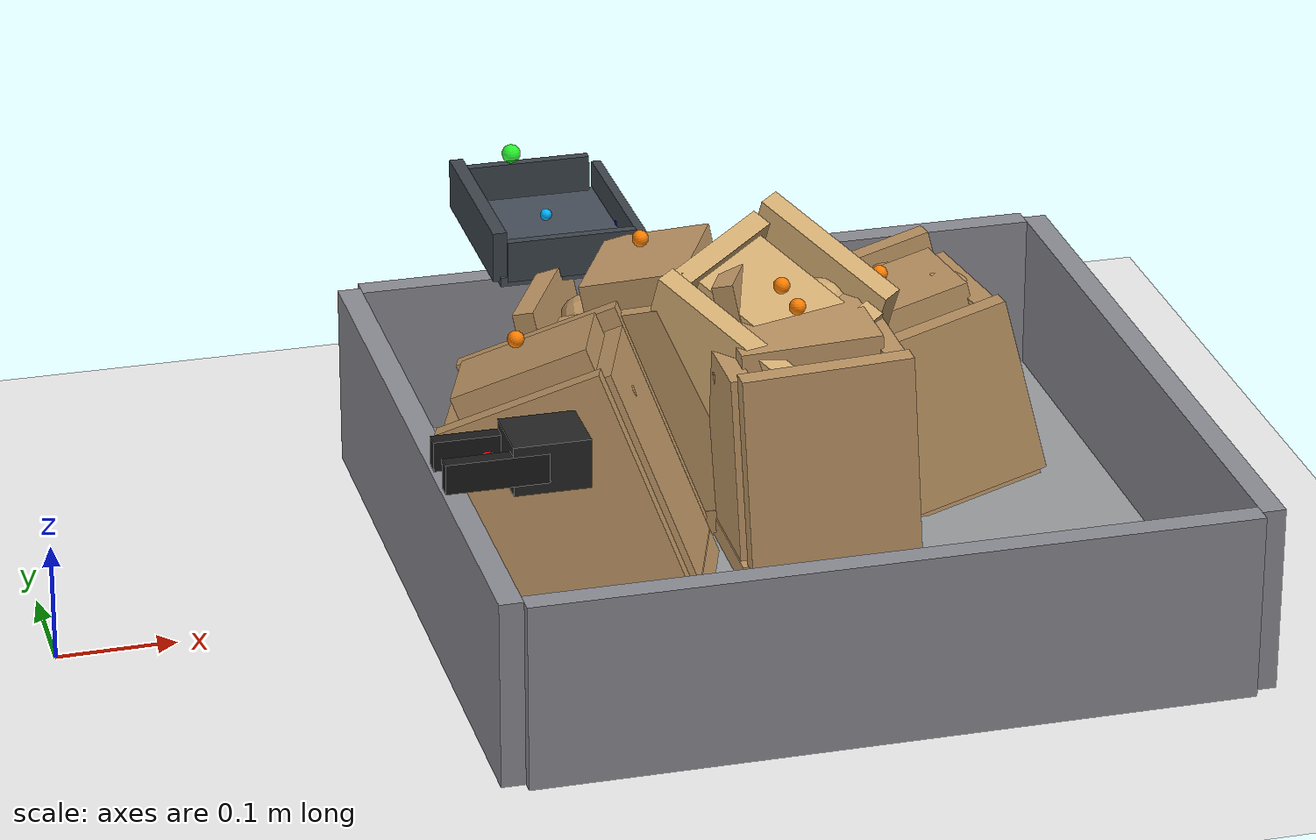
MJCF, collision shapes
<mujoco model="low_fill_top_collapsed_leaning_wedged_ep0_try0">
  <compiler angle="radian" coordinate="local" inertiafromgeom="true" meshdir="D:/Michael/2025/01.Research/01.Parceldetection/16.Pybullet/bullet3-master (1)/bullet3-master/examples/pybullet/examples/DeformableTest/Sackcodex2/object"/>
  <option timestep="0.002" gravity="0 0 -9.81" integrator="implicitfast" iterations="100" tolerance="1e-8"/>
  <size memory="768M" nconmax="12000"/>

  <visual>
    <global azimuth="128" elevation="-20"/>
    <headlight ambient="0.34 0.34 0.34" diffuse="0.78 0.78 0.78" specular="0.15 0.15 0.15"/>
    <rgba haze="0.11 0.13 0.18 1"/>
  </visual>

  <default>
    <geom condim="4" friction="1.15 0.03 0.01" margin="0.003" solimp="0.93 0.98 0.003" solref="0.012 1"/>
    <joint damping="1.2" armature="0.002"/>
    <position kp="2500" forcelimited="true" forcerange="-420 420"/>
    <motor ctrllimited="true"/>
  </default>

  <asset>
    <mesh name="sack_0_visual_mesh" file="sack.obj" scale="0.0716 0.0716 0.0748"/>
    <mesh name="sack_1_visual_mesh" file="sack3.obj" scale="0.0723 0.0723 0.0745"/>
    <mesh name="sack_2_visual_mesh" file="sack9.obj" scale="0.0712 0.0712 0.0755"/>
    <mesh name="sack_3_visual_mesh" file="sack9.obj" scale="0.0727 0.0727 0.0760"/>
    <mesh name="sack_4_visual_mesh" file="sack6Apply.obj" scale="0.0715 0.0715 0.0752"/>
  </asset>

  <worldbody>
    <light name="key" pos="0.85 0.15 1.8" dir="-0.2 -0.1 -1" directional="true"/>
    <geom name="floor" type="plane" size="2 2 0.1" rgba="0.93 0.93 0.93 1"/>
    <geom name="work_pad" type="box" pos="0.62 0 0.012" size="0.30 0.30 0.012" rgba="0.60 0.61 0.62 1" friction="1.4 0.05 0.01"/>
    <geom name="corral_front" type="box" pos="0.93 0.00 0.08" size="0.010 0.30 0.08" rgba="0.55 0.55 0.58 0.22" friction="1.0 0.03 0.01"/>
    <geom name="corral_back" type="box" pos="0.31 0.00 0.08" size="0.010 0.30 0.08" rgba="0.55 0.55 0.58 0.18" friction="1.0 0.03 0.01"/>
    <geom name="corral_left" type="box" pos="0.62 0.30 0.08" size="0.30 0.010 0.08" rgba="0.55 0.55 0.58 0.14" friction="1.0 0.03 0.01"/>
    <geom name="corral_right" type="box" pos="0.62 -0.30 0.08" size="0.30 0.010 0.08" rgba="0.55 0.55 0.58 0.14" friction="1.0 0.03 0.01"/>
    <camera name="overview" pos="1.22 0.00 0.92" xyaxes="0 1 0 -0.46 0 0.88"/>

    <body name="gripper_mocap" mocap="true" pos="0.36 -0.33 0.30" quat="0.707107 0 -0.707107 0"/>
    <body name="scoop_mocap" mocap="true" pos="0.42 0.28 0.20" quat="1 0 0 0"/>

    <body name="gripper_ctrl_base" pos="0.36 -0.33 0.30">
      <inertial pos="0 0 0" mass="0.001" diaginertia="1e-6 1e-6 1e-6"/>
      <joint name="gripper_ctrl_x" type="slide" axis="1 0 0" limited="true" range="0.20 1.00"/>
      <body name="gripper_ctrl_y_body">
        <inertial pos="0 0 0" mass="0.001" diaginertia="1e-6 1e-6 1e-6"/>
        <joint name="gripper_ctrl_y" type="slide" axis="0 1 0" limited="true" range="-0.60 0.60"/>
        <body name="gripper_ctrl_z_body">
          <inertial pos="0 0 0" mass="0.001" diaginertia="1e-6 1e-6 1e-6"/>
          <joint name="gripper_ctrl_z" type="slide" axis="0 0 1" limited="true" range="0.04 0.70"/>
          <body name="gripper_ctrl_yaw_body">
            <inertial pos="0 0 0" mass="0.001" diaginertia="1e-6 1e-6 1e-6"/>
            <joint name="gripper_ctrl_yaw" type="hinge" axis="0 0 1" limited="true" range="-3.1416 3.1416"/>
            <body name="gripper_ctrl_pitch_body">
              <inertial pos="0 0 0" mass="0.001" diaginertia="1e-6 1e-6 1e-6"/>
              <joint name="gripper_ctrl_pitch" type="hinge" axis="0 1 0" limited="true" range="-3.1416 3.1416"/>
              <body name="gripper_ctrl_roll_body">
                <inertial pos="0 0 0" mass="0.001" diaginertia="1e-6 1e-6 1e-6"/>
                <joint name="gripper_ctrl_roll" type="hinge" axis="1 0 0" limited="true" range="-3.1416 3.1416"/>
              </body>
            </body>
          </body>
        </body>
      </body>
    </body>

    <body name="scoop_ctrl_base" pos="0.42 0.28 0.20">
      <inertial pos="0 0 0" mass="0.001" diaginertia="1e-6 1e-6 1e-6"/>
      <joint name="scoop_ctrl_x" type="slide" axis="1 0 0" limited="true" range="0.20 1.00"/>
      <body name="scoop_ctrl_y_body">
        <inertial pos="0 0 0" mass="0.001" diaginertia="1e-6 1e-6 1e-6"/>
        <joint name="scoop_ctrl_y" type="slide" axis="0 1 0" limited="true" range="-0.60 0.60"/>
        <body name="scoop_ctrl_z_body">
          <inertial pos="0 0 0" mass="0.001" diaginertia="1e-6 1e-6 1e-6"/>
          <joint name="scoop_ctrl_z" type="slide" axis="0 0 1" limited="true" range="0.04 0.70"/>
          <body name="scoop_ctrl_yaw_body">
            <inertial pos="0 0 0" mass="0.001" diaginertia="1e-6 1e-6 1e-6"/>
            <joint name="scoop_ctrl_yaw" type="hinge" axis="0 0 1" limited="true" range="-3.1416 3.1416"/>
            <body name="scoop_ctrl_pitch_body">
              <inertial pos="0 0 0" mass="0.001" diaginertia="1e-6 1e-6 1e-6"/>
              <joint name="scoop_ctrl_pitch" type="hinge" axis="0 1 0" limited="true" range="-3.1416 3.1416"/>
              <body name="scoop_ctrl_roll_body">
                <inertial pos="0 0 0" mass="0.001" diaginertia="1e-6 1e-6 1e-6"/>
                <joint name="scoop_ctrl_roll" type="hinge" axis="1 0 0" limited="true" range="-3.1416 3.1416"/>
              </body>
            </body>
          </body>
        </body>
      </body>
    </body>

    <body name="gripper_tool" pos="0.36 -0.33 0.30" quat="0.707107 0 -0.707107 0">
      <freejoint name="gripper_tool_free"/>
      <inertial pos="0 0 0.04" mass="0.08" diaginertia="0.0002 0.0002 0.0002"/>
      <geom name="gripper_palm" type="box" pos="0 0 0.030" size="0.020 0.026 0.030" rgba="0.14 0.14 0.14 1"/>
      <body name="left_finger_body" pos="0 0 0.072">
        <joint name="left_finger_slide" type="slide" axis="0 1 0" limited="true" range="0.010 0.040" damping="12"/>
        <geom name="left_finger_geom" type="box" pos="0 0.020 0" size="0.012 0.006 0.040" rgba="0.10 0.10 0.10 1" friction="2.2 0.05 0.01"/>
      </body>
      <body name="right_finger_body" pos="0 0 0.072">
        <joint name="right_finger_slide" type="slide" axis="0 -1 0" limited="true" range="0.010 0.040" damping="12"/>
        <geom name="right_finger_geom" type="box" pos="0 -0.020 0" size="0.012 0.006 0.040" rgba="0.10 0.10 0.10 1" friction="2.2 0.05 0.01"/>
      </body>
      <site name="gripper_pinch_site" pos="0 0 0.074" size="0.006" rgba="1 0 0 1"/>
    </body>

    <body name="scoop_tool" pos="0.42 0.28 0.20" quat="1 0 0 0">
      <freejoint name="scoop_tool_free"/>
      <inertial pos="0 0 0.02" mass="0.10" diaginertia="0.0003 0.0003 0.0003"/>
      <geom name="scoop_plate" type="box" pos="0.062 0 0" size="0.062 0.085 0.004" rgba="0.28 0.31 0.35 1" friction="1.7 0.05 0.01"/>
      <geom name="scoop_lip" type="box" pos="0.126 0 0.014" size="0.004 0.085 0.014" rgba="0.24 0.27 0.30 1" friction="1.7 0.05 0.01"/>
      <geom name="scoop_left_rail" type="box" pos="0.062 0.082 0.018" size="0.056 0.004 0.018" rgba="0.24 0.27 0.30 1"/>
      <geom name="scoop_right_rail" type="box" pos="0.062 -0.082 0.018" size="0.056 0.004 0.018" rgba="0.24 0.27 0.30 1"/>
      <geom name="scoop_backstop" type="box" pos="0.000 0 0.022" size="0.006 0.082 0.022" rgba="0.24 0.27 0.30 1"/>
      <site name="scoop_tip_site" pos="0.126 0 0.005" size="0.005" rgba="0 0 1 1"/>
      <site name="scoop_center_site" pos="0.060 0 0.020" size="0.005" rgba="0 0.7 1 1"/>
      <site name="score_overlay_site" pos="0.030 0 0.080" size="0.008" rgba="0 1 0 0.8"/>
    </body>

    <body name="sack_0" pos="0.6091 0.0763 0.1537" euler="0.4685 0.0579 -0.9648">
      <freejoint name="sack_0_free"/>

      <geom name="sack_0_visual" type="mesh" mesh="sack_0_visual_mesh" rgba="0.820 0.670 0.440 0.92" contype="0" conaffinity="0"/>
      <site name="sack_0_center_site" pos="0 0 0.000" size="0.006" rgba="0 1 0 1"/>
      <site name="sack_0_top_site" pos="0 0.0060 0.1007" size="0.007" rgba="1 0.5 0 1"/>
      <site name="sack_0_side_site" pos="0.0000 0.0494 0.018" size="0.007" rgba="1 0.8 0 1"/>

      <geom name="sack_0_core_geom" type="ellipsoid" pos="0 0 0.0055" size="0.0455 0.0357 0.0679" mass="0.6628" rgba="0.820 0.670 0.440 0.12" friction="1.0 0.03 0.01"/>
      <geom name="sack_0_core_front" type="capsule" fromto="-0.0200 0 -0.0200 0.0450 0 0.0600" size="0.0302" mass="0.1578" rgba="0.820 0.670 0.440 0.10"/>
      <geom name="sack_0_core_left" type="capsule" fromto="-0.008 0.0280 -0.010 0.018 0.0460 0.060" size="0.0241" mass="0.2841" rgba="0.820 0.670 0.440 0.10"/>
      <geom name="sack_0_core_right" type="capsule" fromto="-0.006 -0.0280 -0.008 0.020 -0.0480 0.054" size="0.0221" mass="0.2841" rgba="0.820 0.670 0.440 0.10"/>

      <body name="sack_0_bottom_support_proxy_body" pos="0 0.0018 -0.0973">
        <joint name="sack_0_bottom_x" type="slide" axis="1 0 0" limited="true" range="-0.012 0.012" damping="18" stiffness="465.4"/>
        <joint name="sack_0_bottom_y" type="slide" axis="0 1 0" limited="true" range="-0.012 0.012" damping="18" stiffness="465.4"/>
        <joint name="sack_0_bottom_z" type="slide" axis="0 0 1" limited="true" range="-0.008 0.020" damping="24" stiffness="573.3"/>
        <geom name="sack_0_bottom_support_proxy" type="box" size="0.0731 0.0554 0.0100" mass="0.1262" rgba="0.820 0.670 0.440 0.34" friction="1.55 0.05 0.01"/>
      </body>

      <body name="sack_0_top_grasp_proxy_body" pos="0.0000 0.0060 0.0707">
        <joint name="sack_0_top_x" type="slide" axis="1 0 0" limited="true" range="-0.018 0.018" damping="12" stiffness="178.8"/>
        <joint name="sack_0_top_y" type="slide" axis="0 1 0" limited="true" range="-0.018 0.018" damping="12" stiffness="178.8"/>
        <joint name="sack_0_top_z" type="slide" axis="0 0 1" limited="true" range="-0.040 0.010" damping="14" stiffness="131.8"/>
        <geom name="sack_0_top_grasp_proxy" type="box" size="0.0571 0.0394 0.0150" mass="0.0947" rgba="0.820 0.670 0.440 0.26" friction="2.2 0.05 0.01"/>
      </body>

      <body name="sack_0_left_side_proxy_body" pos="0 0.0674 0.010">
        <joint name="sack_0_left_side_slide" type="slide" axis="0 -1 0" limited="true" range="-0.028 0.016" damping="16" stiffness="232.1"/>
        <geom name="sack_0_left_side_proxy" type="box" size="0.0691 0.0090 0.0953" mass="0.0947" rgba="0.820 0.670 0.440 0.24"/>
      </body>

      <body name="sack_0_right_side_proxy_body" pos="0 -0.0634 0.010">
        <joint name="sack_0_right_side_slide" type="slide" axis="0 1 0" limited="true" range="-0.028 0.016" damping="16" stiffness="215.1"/>
        <geom name="sack_0_right_side_proxy" type="box" size="0.0691 0.0090 0.0953" mass="0.0947" rgba="0.820 0.670 0.440 0.24"/>
      </body>

      <body name="sack_0_front_proxy_body" pos="0.0631 0 0.000">
        <joint name="sack_0_front_slide" type="slide" axis="-1 0 0" limited="true" range="-0.022 0.012" damping="15" stiffness="222.7"/>
        <geom name="sack_0_front_support_proxy" type="box" size="0.0090 0.0554 0.0933" mass="0.0789" rgba="0.820 0.670 0.440 0.22"/>
      </body>

      <body name="sack_0_back_proxy_body" pos="-0.0631 0 0.000">
        <joint name="sack_0_back_slide" type="slide" axis="1 0 0" limited="true" range="-0.022 0.012" damping="15" stiffness="205.7"/>
        <geom name="sack_0_back_support_proxy" type="box" size="0.0090 0.0554 0.0933" mass="0.0789" rgba="0.820 0.670 0.440 0.22"/>
      </body>

      <body name="sack_0_shape_proxy_body" pos="0.0000 0.0200 0.0382">
        <joint name="sack_0_bulge_y" type="slide" axis="0 1 0" limited="true" range="-0.020 0.020" damping="8" stiffness="96.4"/>
        <joint name="sack_0_bulge_z" type="slide" axis="0 0 1" limited="true" range="-0.014 0.028" damping="8" stiffness="97.3"/>
        <geom name="sack_0_shape_proxy" type="ellipsoid" size="0.0201 0.0162 0.0264" mass="0.0631" rgba="0.820 0.670 0.440 0.28"/>
      </body>
    </body>

    <body name="sack_1" pos="0.5437 0.1156 0.1249" euler="-0.1439 -0.1809 1.1154">
      <freejoint name="sack_1_free"/>

      <geom name="sack_1_visual" type="mesh" mesh="sack_1_visual_mesh" rgba="0.760 0.600 0.400 0.92" contype="0" conaffinity="0"/>
      <site name="sack_1_center_site" pos="0 0 0.000" size="0.006" rgba="0 1 0 1"/>
      <site name="sack_1_top_site" pos="0 -0.0060 0.1332" size="0.007" rgba="1 0.5 0 1"/>
      <site name="sack_1_side_site" pos="0.0000 -0.0552 0.018" size="0.007" rgba="1 0.8 0 1"/>

      <geom name="sack_1_core_geom" type="ellipsoid" pos="0 0 0.0058" size="0.0442 0.0341 0.0771" mass="0.8666" rgba="0.760 0.600 0.400 0.12" friction="1.0 0.03 0.01"/>
      <geom name="sack_1_core_front" type="capsule" fromto="-0.0200 0 -0.0200 0.0450 0 0.0600" size="0.0297" mass="0.2063" rgba="0.760 0.600 0.400 0.10"/>
      <geom name="sack_1_core_left" type="capsule" fromto="-0.008 0.0427 -0.010 0.018 0.0607 0.060" size="0.0242" mass="0.3714" rgba="0.760 0.600 0.400 0.10"/>
      <geom name="sack_1_core_right" type="capsule" fromto="-0.006 -0.0427 -0.008 0.020 -0.0627 0.054" size="0.0223" mass="0.3714" rgba="0.760 0.600 0.400 0.10"/>

      <body name="sack_1_bottom_support_proxy_body" pos="0 -0.0048 -0.0978">
        <joint name="sack_1_bottom_x" type="slide" axis="1 0 0" limited="true" range="-0.012 0.012" damping="18" stiffness="451.3"/>
        <joint name="sack_1_bottom_y" type="slide" axis="0 1 0" limited="true" range="-0.012 0.012" damping="18" stiffness="451.3"/>
        <joint name="sack_1_bottom_z" type="slide" axis="0 0 1" limited="true" range="-0.008 0.020" damping="24" stiffness="556.1"/>
        <geom name="sack_1_bottom_support_proxy" type="box" size="0.0747 0.0612 0.0100" mass="0.1651" rgba="0.760 0.600 0.400 0.34" friction="1.55 0.05 0.01"/>
      </body>

      <body name="sack_1_top_grasp_proxy_body" pos="0.0000 -0.0060 0.1032">
        <joint name="sack_1_top_x" type="slide" axis="1 0 0" limited="true" range="-0.018 0.018" damping="12" stiffness="173.3"/>
        <joint name="sack_1_top_y" type="slide" axis="0 1 0" limited="true" range="-0.018 0.018" damping="12" stiffness="173.3"/>
        <joint name="sack_1_top_z" type="slide" axis="0 0 1" limited="true" range="-0.040 0.010" damping="14" stiffness="127.1"/>
        <geom name="sack_1_top_grasp_proxy" type="box" size="0.0587 0.0452 0.0150" mass="0.1238" rgba="0.760 0.600 0.400 0.26" friction="2.2 0.05 0.01"/>
      </body>

      <body name="sack_1_left_side_proxy_body" pos="0 0.0879 0.010">
        <joint name="sack_1_left_side_slide" type="slide" axis="0 -1 0" limited="true" range="-0.028 0.016" damping="16" stiffness="223.6"/>
        <geom name="sack_1_left_side_proxy" type="box" size="0.0707 0.0090 0.0958" mass="0.1238" rgba="0.760 0.600 0.400 0.24"/>
      </body>

      <body name="sack_1_right_side_proxy_body" pos="0 -0.0839 0.010">
        <joint name="sack_1_right_side_slide" type="slide" axis="0 1 0" limited="true" range="-0.028 0.016" damping="16" stiffness="207.4"/>
        <geom name="sack_1_right_side_proxy" type="box" size="0.0707 0.0090 0.0958" mass="0.1238" rgba="0.760 0.600 0.400 0.24"/>
      </body>

      <body name="sack_1_front_proxy_body" pos="0.0647 0 0.000">
        <joint name="sack_1_front_slide" type="slide" axis="-1 0 0" limited="true" range="-0.022 0.012" damping="15" stiffness="215.7"/>
        <geom name="sack_1_front_support_proxy" type="box" size="0.0090 0.0612 0.0938" mass="0.1032" rgba="0.760 0.600 0.400 0.22"/>
      </body>

      <body name="sack_1_back_proxy_body" pos="-0.0647 0 0.000">
        <joint name="sack_1_back_slide" type="slide" axis="1 0 0" limited="true" range="-0.022 0.012" damping="15" stiffness="199.5"/>
        <geom name="sack_1_back_support_proxy" type="box" size="0.0090 0.0612 0.0938" mass="0.1032" rgba="0.760 0.600 0.400 0.22"/>
      </body>

      <body name="sack_1_shape_proxy_body" pos="0.0000 -0.0347 0.0429">
        <joint name="sack_1_bulge_y" type="slide" axis="0 1 0" limited="true" range="-0.020 0.020" damping="8" stiffness="105.8"/>
        <joint name="sack_1_bulge_z" type="slide" axis="0 0 1" limited="true" range="-0.014 0.028" damping="8" stiffness="104.3"/>
        <geom name="sack_1_shape_proxy" type="ellipsoid" size="0.0202 0.0165 0.0262" mass="0.0825" rgba="0.760 0.600 0.400 0.28"/>
      </body>
    </body>

    <body name="sack_2" pos="0.6312 -0.0024 0.1269" euler="-0.0315 -0.0521 3.1059">
      <freejoint name="sack_2_free"/>

      <geom name="sack_2_visual" type="mesh" mesh="sack_2_visual_mesh" rgba="0.760 0.600 0.400 0.92" contype="0" conaffinity="0"/>
      <site name="sack_2_center_site" pos="0 0 0.000" size="0.006" rgba="0 1 0 1"/>
      <site name="sack_2_top_site" pos="0 -0.0060 0.1104" size="0.007" rgba="1 0.5 0 1"/>
      <site name="sack_2_side_site" pos="0.0000 -0.0577 0.018" size="0.007" rgba="1 0.8 0 1"/>

      <geom name="sack_2_core_geom" type="ellipsoid" pos="0 0 0.0058" size="0.0449 0.0352 0.0790" mass="0.9973" rgba="0.760 0.600 0.400 0.12" friction="1.0 0.03 0.01"/>
      <geom name="sack_2_core_front" type="capsule" fromto="-0.0200 0 -0.0200 0.0450 0 0.0600" size="0.0307" mass="0.2375" rgba="0.760 0.600 0.400 0.10"/>
      <geom name="sack_2_core_left" type="capsule" fromto="-0.008 0.0373 -0.010 0.018 0.0553 0.060" size="0.0242" mass="0.4274" rgba="0.760 0.600 0.400 0.10"/>
      <geom name="sack_2_core_right" type="capsule" fromto="-0.006 -0.0373 -0.008 0.020 -0.0573 0.054" size="0.0222" mass="0.4274" rgba="0.760 0.600 0.400 0.10"/>

      <body name="sack_2_bottom_support_proxy_body" pos="0 0.0126 -0.0877">
        <joint name="sack_2_bottom_x" type="slide" axis="1 0 0" limited="true" range="-0.012 0.012" damping="18" stiffness="480.3"/>
        <joint name="sack_2_bottom_y" type="slide" axis="0 1 0" limited="true" range="-0.012 0.012" damping="18" stiffness="480.3"/>
        <joint name="sack_2_bottom_z" type="slide" axis="0 0 1" limited="true" range="-0.008 0.020" damping="24" stiffness="591.5"/>
        <geom name="sack_2_bottom_support_proxy" type="box" size="0.0757 0.0637 0.0100" mass="0.1900" rgba="0.760 0.600 0.400 0.34" friction="1.55 0.05 0.01"/>
      </body>

      <body name="sack_2_top_grasp_proxy_body" pos="0.0000 -0.0060 0.0804">
        <joint name="sack_2_top_x" type="slide" axis="1 0 0" limited="true" range="-0.018 0.018" damping="12" stiffness="184.6"/>
        <joint name="sack_2_top_y" type="slide" axis="0 1 0" limited="true" range="-0.018 0.018" damping="12" stiffness="184.6"/>
        <joint name="sack_2_top_z" type="slide" axis="0 0 1" limited="true" range="-0.040 0.010" damping="14" stiffness="136.8"/>
        <geom name="sack_2_top_grasp_proxy" type="box" size="0.0597 0.0477 0.0150" mass="0.1425" rgba="0.760 0.600 0.400 0.26" friction="2.2 0.05 0.01"/>
      </body>

      <body name="sack_2_left_side_proxy_body" pos="0 0.0851 0.010">
        <joint name="sack_2_left_side_slide" type="slide" axis="0 -1 0" limited="true" range="-0.028 0.016" damping="16" stiffness="242.9"/>
        <geom name="sack_2_left_side_proxy" type="box" size="0.0717 0.0090 0.0857" mass="0.1425" rgba="0.760 0.600 0.400 0.24"/>
      </body>

      <body name="sack_2_right_side_proxy_body" pos="0 -0.0811 0.010">
        <joint name="sack_2_right_side_slide" type="slide" axis="0 1 0" limited="true" range="-0.028 0.016" damping="16" stiffness="225.1"/>
        <geom name="sack_2_right_side_proxy" type="box" size="0.0717 0.0090 0.0857" mass="0.1425" rgba="0.760 0.600 0.400 0.24"/>
      </body>

      <body name="sack_2_front_proxy_body" pos="0.0657 0 0.000">
        <joint name="sack_2_front_slide" type="slide" axis="-1 0 0" limited="true" range="-0.022 0.012" damping="15" stiffness="230.2"/>
        <geom name="sack_2_front_support_proxy" type="box" size="0.0090 0.0637 0.0837" mass="0.1187" rgba="0.760 0.600 0.400 0.22"/>
      </body>

      <body name="sack_2_back_proxy_body" pos="-0.0657 0 0.000">
        <joint name="sack_2_back_slide" type="slide" axis="1 0 0" limited="true" range="-0.022 0.012" damping="15" stiffness="212.4"/>
        <geom name="sack_2_back_support_proxy" type="box" size="0.0090 0.0637 0.0837" mass="0.1187" rgba="0.760 0.600 0.400 0.22"/>
      </body>

      <body name="sack_2_shape_proxy_body" pos="0.0000 -0.0293 0.0332">
        <joint name="sack_2_bulge_y" type="slide" axis="0 1 0" limited="true" range="-0.020 0.020" damping="8" stiffness="86.5"/>
        <joint name="sack_2_bulge_z" type="slide" axis="0 0 1" limited="true" range="-0.014 0.028" damping="8" stiffness="89.8"/>
        <geom name="sack_2_shape_proxy" type="ellipsoid" size="0.0202 0.0163 0.0262" mass="0.0950" rgba="0.760 0.600 0.400 0.28"/>
      </body>
    </body>

    <body name="sack_3" pos="0.7502 0.0883 0.1137" euler="-0.0655 -0.2417 0.0526">
      <freejoint name="sack_3_free"/>

      <geom name="sack_3_visual" type="mesh" mesh="sack_3_visual_mesh" rgba="0.760 0.600 0.400 0.92" contype="0" conaffinity="0"/>
      <site name="sack_3_center_site" pos="0 0 0.000" size="0.006" rgba="0 1 0 1"/>
      <site name="sack_3_top_site" pos="0 0.0060 0.1046" size="0.007" rgba="1 0.5 0 1"/>
      <site name="sack_3_side_site" pos="0.0000 0.0567 0.018" size="0.007" rgba="1 0.8 0 1"/>

      <geom name="sack_3_core_geom" type="ellipsoid" pos="0 0 0.0058" size="0.0445 0.0347 0.0780" mass="0.8740" rgba="0.760 0.600 0.400 0.12" friction="1.0 0.03 0.01"/>
      <geom name="sack_3_core_front" type="capsule" fromto="-0.0200 0 -0.0200 0.0450 0 0.0600" size="0.0302" mass="0.2081" rgba="0.760 0.600 0.400 0.10"/>
      <geom name="sack_3_core_left" type="capsule" fromto="-0.008 0.0471 -0.010 0.018 0.0651 0.060" size="0.0243" mass="0.3746" rgba="0.760 0.600 0.400 0.10"/>
      <geom name="sack_3_core_right" type="capsule" fromto="-0.006 -0.0471 -0.008 0.020 -0.0671 0.054" size="0.0223" mass="0.3746" rgba="0.760 0.600 0.400 0.10"/>

      <body name="sack_3_bottom_support_proxy_body" pos="0 -0.0002 -0.0807">
        <joint name="sack_3_bottom_x" type="slide" axis="1 0 0" limited="true" range="-0.012 0.012" damping="18" stiffness="465.8"/>
        <joint name="sack_3_bottom_y" type="slide" axis="0 1 0" limited="true" range="-0.012 0.012" damping="18" stiffness="465.8"/>
        <joint name="sack_3_bottom_z" type="slide" axis="0 0 1" limited="true" range="-0.008 0.020" damping="24" stiffness="573.7"/>
        <geom name="sack_3_bottom_support_proxy" type="box" size="0.0752 0.0627 0.0100" mass="0.1665" rgba="0.760 0.600 0.400 0.34" friction="1.55 0.05 0.01"/>
      </body>

      <body name="sack_3_top_grasp_proxy_body" pos="0.0000 0.0060 0.0746">
        <joint name="sack_3_top_x" type="slide" axis="1 0 0" limited="true" range="-0.018 0.018" damping="12" stiffness="178.9"/>
        <joint name="sack_3_top_y" type="slide" axis="0 1 0" limited="true" range="-0.018 0.018" damping="12" stiffness="178.9"/>
        <joint name="sack_3_top_z" type="slide" axis="0 0 1" limited="true" range="-0.040 0.010" damping="14" stiffness="131.9"/>
        <geom name="sack_3_top_grasp_proxy" type="box" size="0.0592 0.0467 0.0150" mass="0.1249" rgba="0.760 0.600 0.400 0.26" friction="2.2 0.05 0.01"/>
      </body>

      <body name="sack_3_left_side_proxy_body" pos="0 0.0938 0.010">
        <joint name="sack_3_left_side_slide" type="slide" axis="0 -1 0" limited="true" range="-0.028 0.016" damping="16" stiffness="233.2"/>
        <geom name="sack_3_left_side_proxy" type="box" size="0.0712 0.0090 0.0787" mass="0.1249" rgba="0.760 0.600 0.400 0.24"/>
      </body>

      <body name="sack_3_right_side_proxy_body" pos="0 -0.0898 0.010">
        <joint name="sack_3_right_side_slide" type="slide" axis="0 1 0" limited="true" range="-0.028 0.016" damping="16" stiffness="216.2"/>
        <geom name="sack_3_right_side_proxy" type="box" size="0.0712 0.0090 0.0787" mass="0.1249" rgba="0.760 0.600 0.400 0.24"/>
      </body>

      <body name="sack_3_front_proxy_body" pos="0.0652 0 0.000">
        <joint name="sack_3_front_slide" type="slide" axis="-1 0 0" limited="true" range="-0.022 0.012" damping="15" stiffness="222.9"/>
        <geom name="sack_3_front_support_proxy" type="box" size="0.0090 0.0627 0.0767" mass="0.1041" rgba="0.760 0.600 0.400 0.22"/>
      </body>

      <body name="sack_3_back_proxy_body" pos="-0.0652 0 0.000">
        <joint name="sack_3_back_slide" type="slide" axis="1 0 0" limited="true" range="-0.022 0.012" damping="15" stiffness="205.9"/>
        <geom name="sack_3_back_support_proxy" type="box" size="0.0090 0.0627 0.0767" mass="0.1041" rgba="0.760 0.600 0.400 0.22"/>
      </body>

      <body name="sack_3_shape_proxy_body" pos="0.0000 0.0391 0.0381">
        <joint name="sack_3_bulge_y" type="slide" axis="0 1 0" limited="true" range="-0.020 0.020" damping="8" stiffness="96.2"/>
        <joint name="sack_3_bulge_z" type="slide" axis="0 0 1" limited="true" range="-0.014 0.028" damping="8" stiffness="97.1"/>
        <geom name="sack_3_shape_proxy" type="ellipsoid" size="0.0203 0.0165 0.0262" mass="0.0832" rgba="0.760 0.600 0.400 0.28"/>
      </body>
    </body>

    <body name="sack_4" pos="0.4321 -0.0228 0.1105" euler="-0.2330 -0.3400 -0.3452">
      <freejoint name="sack_4_free"/>

      <geom name="sack_4_visual" type="mesh" mesh="sack_4_visual_mesh" rgba="0.760 0.600 0.400 0.92" contype="0" conaffinity="0"/>
      <site name="sack_4_center_site" pos="0 0 0.000" size="0.006" rgba="0 1 0 1"/>
      <site name="sack_4_top_site" pos="0 0.0060 0.1345" size="0.007" rgba="1 0.5 0 1"/>
      <site name="sack_4_side_site" pos="0.0000 0.0570 0.018" size="0.007" rgba="1 0.8 0 1"/>

      <geom name="sack_4_core_geom" type="ellipsoid" pos="0 0 0.0058" size="0.0447 0.0349 0.0784" mass="0.9963" rgba="0.760 0.600 0.400 0.12" friction="1.0 0.03 0.01"/>
      <geom name="sack_4_core_front" type="capsule" fromto="-0.0200 0 -0.0200 0.0450 0 0.0600" size="0.0304" mass="0.2372" rgba="0.760 0.600 0.400 0.10"/>
      <geom name="sack_4_core_left" type="capsule" fromto="-0.008 0.0409 -0.010 0.018 0.0589 0.060" size="0.0242" mass="0.4270" rgba="0.760 0.600 0.400 0.10"/>
      <geom name="sack_4_core_right" type="capsule" fromto="-0.006 -0.0409 -0.008 0.020 -0.0609 0.054" size="0.0223" mass="0.4270" rgba="0.760 0.600 0.400 0.10"/>

      <body name="sack_4_bottom_support_proxy_body" pos="0 -0.0037 -0.1023">
        <joint name="sack_4_bottom_x" type="slide" axis="1 0 0" limited="true" range="-0.012 0.012" damping="18" stiffness="471.3"/>
        <joint name="sack_4_bottom_y" type="slide" axis="0 1 0" limited="true" range="-0.012 0.012" damping="18" stiffness="471.3"/>
        <joint name="sack_4_bottom_z" type="slide" axis="0 0 1" limited="true" range="-0.008 0.020" damping="24" stiffness="580.5"/>
        <geom name="sack_4_bottom_support_proxy" type="box" size="0.0754 0.0630 0.0100" mass="0.1898" rgba="0.760 0.600 0.400 0.34" friction="1.55 0.05 0.01"/>
      </body>

      <body name="sack_4_top_grasp_proxy_body" pos="0.0000 0.0060 0.1045">
        <joint name="sack_4_top_x" type="slide" axis="1 0 0" limited="true" range="-0.018 0.018" damping="12" stiffness="181.1"/>
        <joint name="sack_4_top_y" type="slide" axis="0 1 0" limited="true" range="-0.018 0.018" damping="12" stiffness="181.1"/>
        <joint name="sack_4_top_z" type="slide" axis="0 0 1" limited="true" range="-0.040 0.010" damping="14" stiffness="133.8"/>
        <geom name="sack_4_top_grasp_proxy" type="box" size="0.0594 0.0470 0.0150" mass="0.1423" rgba="0.760 0.600 0.400 0.26" friction="2.2 0.05 0.01"/>
      </body>

      <body name="sack_4_left_side_proxy_body" pos="0 0.0879 0.010">
        <joint name="sack_4_left_side_slide" type="slide" axis="0 -1 0" limited="true" range="-0.028 0.016" damping="16" stiffness="236.8"/>
        <geom name="sack_4_left_side_proxy" type="box" size="0.0714 0.0090 0.1003" mass="0.1423" rgba="0.760 0.600 0.400 0.24"/>
      </body>

      <body name="sack_4_right_side_proxy_body" pos="0 -0.0839 0.010">
        <joint name="sack_4_right_side_slide" type="slide" axis="0 1 0" limited="true" range="-0.028 0.016" damping="16" stiffness="219.6"/>
        <geom name="sack_4_right_side_proxy" type="box" size="0.0714 0.0090 0.1003" mass="0.1423" rgba="0.760 0.600 0.400 0.24"/>
      </body>

      <body name="sack_4_front_proxy_body" pos="0.0654 0 0.000">
        <joint name="sack_4_front_slide" type="slide" axis="-1 0 0" limited="true" range="-0.022 0.012" damping="15" stiffness="225.6"/>
        <geom name="sack_4_front_support_proxy" type="box" size="0.0090 0.0630 0.0983" mass="0.1186" rgba="0.760 0.600 0.400 0.22"/>
      </body>

      <body name="sack_4_back_proxy_body" pos="-0.0654 0 0.000">
        <joint name="sack_4_back_slide" type="slide" axis="1 0 0" limited="true" range="-0.022 0.012" damping="15" stiffness="208.3"/>
        <geom name="sack_4_back_support_proxy" type="box" size="0.0090 0.0630 0.0983" mass="0.1186" rgba="0.760 0.600 0.400 0.22"/>
      </body>

      <body name="sack_4_shape_proxy_body" pos="0.0000 0.0329 0.0362">
        <joint name="sack_4_bulge_y" type="slide" axis="0 1 0" limited="true" range="-0.020 0.020" damping="8" stiffness="92.5"/>
        <joint name="sack_4_bulge_z" type="slide" axis="0 0 1" limited="true" range="-0.014 0.028" damping="8" stiffness="94.4"/>
        <geom name="sack_4_shape_proxy" type="ellipsoid" size="0.0202 0.0164 0.0262" mass="0.0949" rgba="0.760 0.600 0.400 0.28"/>
      </body>
    </body>
  </worldbody>

  <equality>
    <weld name="gripper_follow" body1="gripper_mocap" body2="gripper_tool" torquescale="400" solref="0.002 1" solimp="0.99 0.999 0.0001"/>
    <weld name="scoop_follow" body1="scoop_mocap" body2="scoop_tool" torquescale="500" solref="0.002 1" solimp="0.99 0.999 0.0001"/>
  </equality>

  <actuator>
    <position name="gripper_ctrl_x_act" joint="gripper_ctrl_x" ctrlrange="0.20 1.00" kp="3500" forcerange="-300 300"/>
    <position name="gripper_ctrl_y_act" joint="gripper_ctrl_y" ctrlrange="-0.60 0.60" kp="3500" forcerange="-300 300"/>
    <position name="gripper_ctrl_z_act" joint="gripper_ctrl_z" ctrlrange="0.04 0.70" kp="3500" forcerange="-300 300"/>
    <position name="gripper_ctrl_yaw_act" joint="gripper_ctrl_yaw" ctrlrange="-3.1416 3.1416" kp="1800" forcerange="-250 250"/>
    <position name="gripper_ctrl_pitch_act" joint="gripper_ctrl_pitch" ctrlrange="-3.1416 3.1416" kp="1800" forcerange="-250 250"/>
    <position name="gripper_ctrl_roll_act" joint="gripper_ctrl_roll" ctrlrange="-3.1416 3.1416" kp="1800" forcerange="-250 250"/>
    <position name="scoop_ctrl_x_act" joint="scoop_ctrl_x" ctrlrange="0.20 1.00" kp="3500" forcerange="-300 300"/>
    <position name="scoop_ctrl_y_act" joint="scoop_ctrl_y" ctrlrange="-0.60 0.60" kp="3500" forcerange="-300 300"/>
    <position name="scoop_ctrl_z_act" joint="scoop_ctrl_z" ctrlrange="0.04 0.70" kp="3500" forcerange="-300 300"/>
    <position name="scoop_ctrl_yaw_act" joint="scoop_ctrl_yaw" ctrlrange="-3.1416 3.1416" kp="1800" forcerange="-250 250"/>
    <position name="scoop_ctrl_pitch_act" joint="scoop_ctrl_pitch" ctrlrange="-3.1416 3.1416" kp="1800" forcerange="-250 250"/>
    <position name="scoop_ctrl_roll_act" joint="scoop_ctrl_roll" ctrlrange="-3.1416 3.1416" kp="1800" forcerange="-250 250"/>
    <position name="left_finger_act" joint="left_finger_slide" ctrlrange="0.010 0.040" kp="2800" forcerange="-220 220"/>
    <position name="right_finger_act" joint="right_finger_slide" ctrlrange="0.010 0.040" kp="2800" forcerange="-220 220"/>
  </actuator>

  <contact>
    <exclude body1="sack_0_top_grasp_proxy_body" body2="sack_0_left_side_proxy_body"/>
    <exclude body1="sack_0_top_grasp_proxy_body" body2="sack_0_right_side_proxy_body"/>
    <exclude body1="sack_1_top_grasp_proxy_body" body2="sack_1_left_side_proxy_body"/>
    <exclude body1="sack_1_top_grasp_proxy_body" body2="sack_1_right_side_proxy_body"/>
    <exclude body1="sack_2_top_grasp_proxy_body" body2="sack_2_left_side_proxy_body"/>
    <exclude body1="sack_2_top_grasp_proxy_body" body2="sack_2_right_side_proxy_body"/>
    <exclude body1="sack_3_top_grasp_proxy_body" body2="sack_3_left_side_proxy_body"/>
    <exclude body1="sack_3_top_grasp_proxy_body" body2="sack_3_right_side_proxy_body"/>
    <exclude body1="sack_4_top_grasp_proxy_body" body2="sack_4_left_side_proxy_body"/>
    <exclude body1="sack_4_top_grasp_proxy_body" body2="sack_4_right_side_proxy_body"/>
  </contact>
</mujoco>
